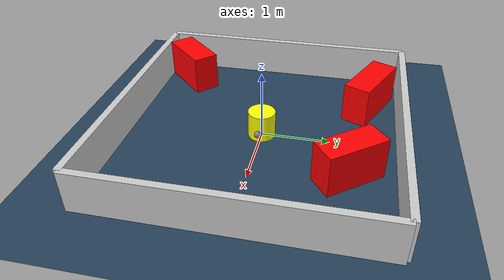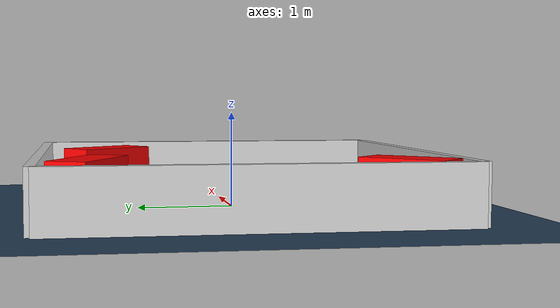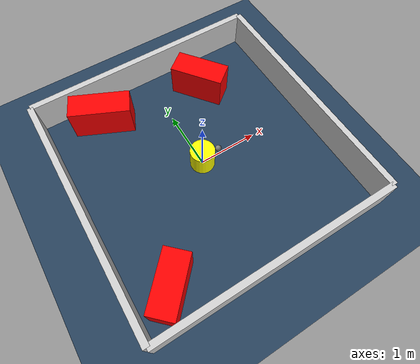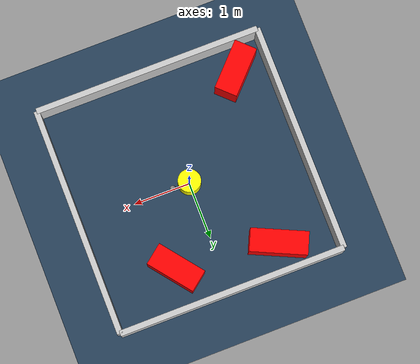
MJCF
<?xml version="1.0" ?>
<mujoco model="generated_environment">
  <option timestep="0.01" integrator="RK4" cone="elliptic"/>
  <default>
    <geom density="1"/>
  </default>
  <asset>
    <texture builtin="gradient" height="3072" rgb1="0.3 0.5 0.7" rgb2="0 0 0" type="skybox" width="512"/>
    <texture builtin="checker" height="300" mark="edge" markrgb="0.8 0.8 0.8" name="groundplane" rgb1="0.2 0.3 0.4" rgb2="0.1 0.2 0.3" type="2d" width="300"/>
    <material name="groundplane" reflectance="0.2" texrepeat="5 5" texture="groundplane" texuniform="true"/>
    <material name="robot" rgba="0.0 1.0 0.0 1"/>
  </asset>
  <worldbody>
    <light dir="0 0 -1" directional="true" pos="0 0 1.5"/>
    <geom condim="4" friction="1.0 0.005 0.001" material="groundplane" name="floor" size="0 0 0.05" type="plane"/>
    <body name="walls">
      <geom name="wall_1" condim="4" pos="-2.0 0.0 0.3" rgba="0.800000011920929 0.800000011920929 0.800000011920929 1.0" size="0.05 2.0 0.3" type="box"/>
      <geom name="wall_2" condim="4" pos="2.0 0.0 0.3" rgba="0.800000011920929 0.800000011920929 0.800000011920929 1.0" size="0.05 2.0 0.3" type="box"/>
      <geom name="wall_3" condim="4" pos="0.0 -2.0 0.3" rgba="0.800000011920929 0.800000011920929 0.800000011920929 1.0" size="2.0 0.05 0.3" type="box"/>
      <geom name="wall_4" condim="4" pos="0.0 2.0 0.3" rgba="0.800000011920929 0.800000011920929 0.800000011920929 1.0" size="2.0 0.05 0.3" type="box"/>
    </body>
    <body name="robot">
      <joint name="joint_x" type="slide" pos="0 0 0" axis="1 0 0"/>
      <joint name="joint_y" type="slide" pos="0 0 0" axis="0 1 0"/>
      <geom name="robot" type="sphere" pos="0.3 0.0 0.2" size="0.05" mass="5." friction="1.0 0.005 0.0001" condim="4" rgba="0.5 0.5 0.5 1.0"/>
      <site name="sensor_ball"/>
    </body>
    <body name="obstacle_movable_1">
      <geom name="obstacle_movable_1" condim="4" pos="0.0 0.0 0.2" euler="0 0 0.0" friction="1.0 0.005 0.001" rgba="1.0 1.0 0.0 1.0" size="0.2 0.2 0.0" type="cylinder" mass="0.1"/>
      <joint type="free"/>
    </body>
    <body name="obstacle_2_static">
      <geom name="obstacle_2_static" condim="4" pos="0.7407418581398726 1.3032501223705737 0.3" euler="0 0 128.01745520563108" friction="1.0 0.005 0.001" rgba="1 0 0 1" size="0.4457085961961094 0.2 0.3" type="box"/>
    </body>
    <body name="obstacle_3_static">
      <geom name="obstacle_3_static" condim="4" pos="-1.4124124677405456 -1.491341381196789 0.3" euler="0 0 46.09988133579335" friction="1.0 0.005 0.001" rgba="1 0 0 1" size="0.44320853879943606 0.2 0.3" type="box"/>
    </body>
    <body name="obstacle_4_static">
      <geom name="obstacle_4_static" condim="4" pos="-1.0258658358269392 1.5143951118830976 0.3" euler="0 0 335.4180682070313" friction="1.0 0.005 0.001" rgba="1 0 0 1" size="0.49418789103554495 0.2 0.3" type="box"/>
    </body>
  </worldbody>
  <actuator>
    <motor name="actuator_x" joint="joint_x" gear="1" ctrlrange="-1 1"/>
    <motor name="actuator_y" joint="joint_y" gear="1" ctrlrange="-1 1"/>
  </actuator>
</mujoco>
